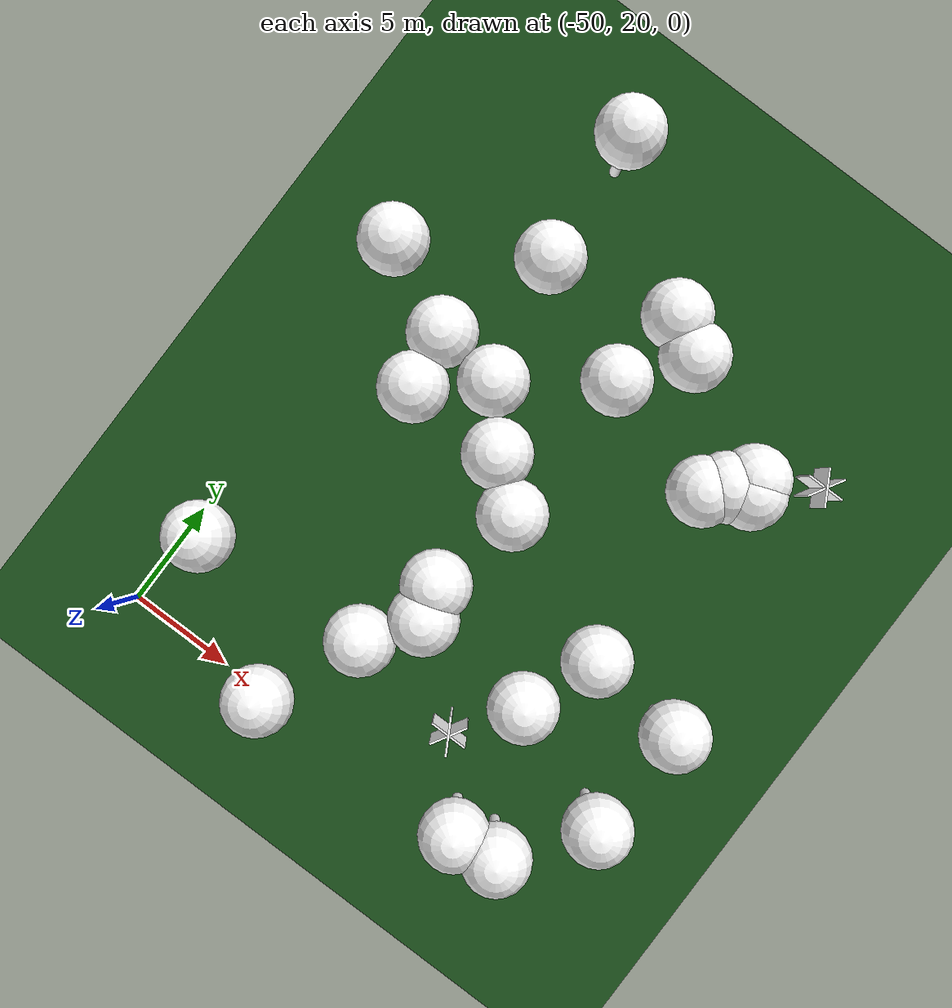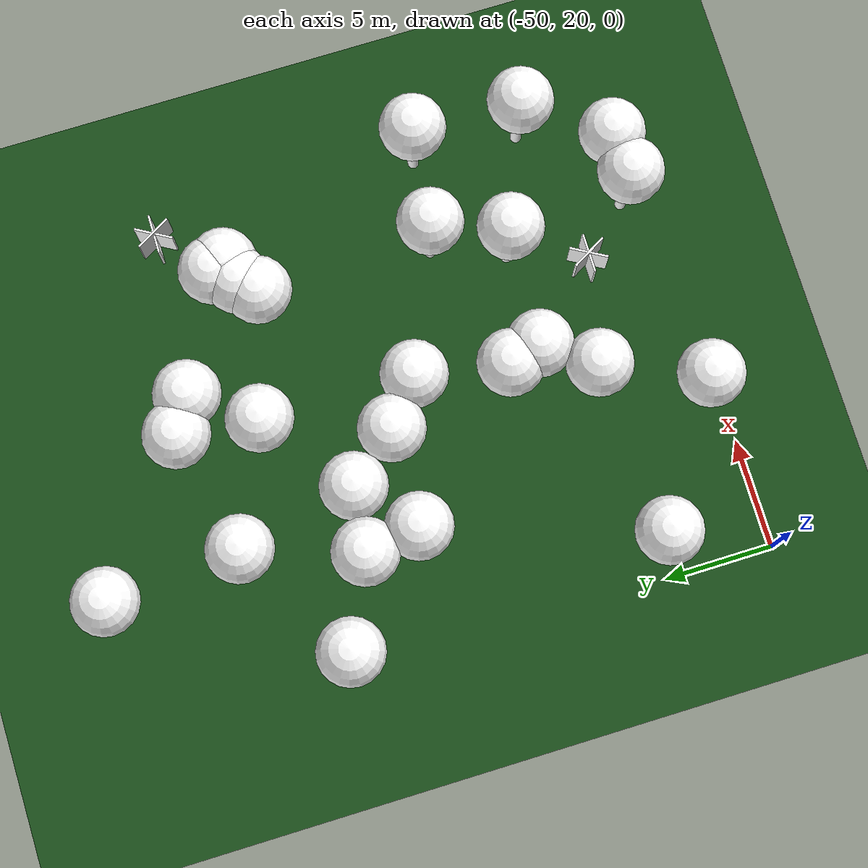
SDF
<sdf version="1.8">
 <world name="forest_world">
  <model name="fire_12">
   <pose>-35.18 23.91 1.00 0 0 0.00</pose>
   <static>true</static>
   <link name="fire_link">
    <visual name="fire_12_fire_main_0">
     <geometry><box><size>1.80 0.10 2.00</size></box></geometry>
     <material>
      <ambient>0.7 0.35 0.0 1</ambient>
      <diffuse>1 1 1 1</diffuse>
      <specular>0 0 0 1</specular>
      <emissive>0 0 0 1</emissive>
      <pbr>
       <metal><albedo_map>textures/fire.png</albedo_map><metalness>0.0</metalness><roughness>0.6</roughness></metal>
      </pbr>
     </material>
     <transparency>0.0</transparency>
     <cast_shadows>false</cast_shadows>
    </visual>
    <visual name="fire_12_fire_60_1">
     <pose>0.00 0.00 0.10 0 0 1.05</pose>
     <geometry><box><size>1.80 0.10 2.00</size></box></geometry>
     <material>
      <ambient>0.7 0.35 0.0 1</ambient>
      <diffuse>1 1 1 1</diffuse>
      <specular>0 0 0 1</specular>
      <emissive>0 0 0 1</emissive>
      <pbr>
       <metal><albedo_map>textures/fire.png</albedo_map><metalness>0.0</metalness><roughness>0.6</roughness></metal>
      </pbr>
     </material>
     <transparency>0.0</transparency>
     <cast_shadows>false</cast_shadows>
    </visual>
    <visual name="fire_12_fire_120_2">
     <pose>0.00 0.00 0.20 0 0 2.09</pose>
     <geometry><box><size>1.80 0.10 2.00</size></box></geometry>
     <material>
      <ambient>0.7 0.35 0.0 1</ambient>
      <diffuse>1 1 1 1</diffuse>
      <specular>0 0 0 1</specular>
      <emissive>0 0 0 1</emissive>
      <pbr>
       <metal><albedo_map>textures/fire.png</albedo_map><metalness>0.0</metalness><roughness>0.6</roughness></metal>
      </pbr>
     </material>
     <transparency>0.0</transparency>
     <cast_shadows>false</cast_shadows>
    </visual>
    <light type="point" name="fire_12_light_0">
     <pose>0.40 0.00 0.50 0 0 0</pose>
     <diffuse>1.0 0.7 0.3 1</diffuse>
     <specular>1.0 0.8 0.3 1</specular>
     <intensity>2</intensity>
     <attenuation>
      <range>2</range>
      <constant>0.1</constant>
      <linear>0.05</linear>
      <quadratic>0.02</quadratic>
     </attenuation>
     <cast_shadows>false</cast_shadows>
    </light>
    <light type="point" name="fire_12_light_1">
     <pose>-0.20 0.35 0.50 0 0 0</pose>
     <diffuse>1.0 0.7 0.3 1</diffuse>
     <specular>1.0 0.8 0.3 1</specular>
     <intensity>2</intensity>
     <attenuation>
      <range>2</range>
      <constant>0.1</constant>
      <linear>0.05</linear>
      <quadratic>0.02</quadratic>
     </attenuation>
     <cast_shadows>false</cast_shadows>
    </light>
    <light type="point" name="fire_12_light_2">
     <pose>-0.20 -0.35 0.50 0 0 0</pose>
     <diffuse>1.0 0.7 0.3 1</diffuse>
     <specular>1.0 0.8 0.3 1</specular>
     <intensity>2</intensity>
     <attenuation>
      <range>2</range>
      <constant>0.1</constant>
      <linear>0.05</linear>
      <quadratic>0.02</quadratic>
     </attenuation>
     <cast_shadows>false</cast_shadows>
    </light>
   </link>
   <plugin filename="libignition-gazebo-pose-publisher-system.so" name="ignition::gazebo::systems::PosePublisher">
    <frame_id>world</frame_id>
    <publish_link_pose>true</publish_link_pose>
    <use_pose_vector_msg>true</use_pose_vector_msg>
    <static_publisher>true</static_publisher>
    <static_update_frequency>1</static_update_frequency>
   </plugin>
  </model>
  <model name="fire_38">
   <pose>-28.61 42.40 1.00 0 0 0.00</pose>
   <static>true</static>
   <link name="fire_link">
    <visual name="fire_38_fire_main_0">
     <geometry><box><size>1.80 0.10 2.00</size></box></geometry>
     <material>
      <ambient>0.7 0.35 0.0 1</ambient>
      <diffuse>1 1 1 1</diffuse>
      <specular>0 0 0 1</specular>
      <emissive>0 0 0 1</emissive>
      <pbr>
       <metal><albedo_map>textures/fire.png</albedo_map><metalness>0.0</metalness><roughness>0.6</roughness></metal>
      </pbr>
     </material>
     <transparency>0.0</transparency>
     <cast_shadows>false</cast_shadows>
    </visual>
    <visual name="fire_38_fire_60_1">
     <pose>0.00 0.00 0.10 0 0 1.05</pose>
     <geometry><box><size>1.80 0.10 2.00</size></box></geometry>
     <material>
      <ambient>0.7 0.35 0.0 1</ambient>
      <diffuse>1 1 1 1</diffuse>
      <specular>0 0 0 1</specular>
      <emissive>0 0 0 1</emissive>
      <pbr>
       <metal><albedo_map>textures/fire.png</albedo_map><metalness>0.0</metalness><roughness>0.6</roughness></metal>
      </pbr>
     </material>
     <transparency>0.0</transparency>
     <cast_shadows>false</cast_shadows>
    </visual>
    <visual name="fire_38_fire_120_2">
     <pose>0.00 0.00 0.20 0 0 2.09</pose>
     <geometry><box><size>1.80 0.10 2.00</size></box></geometry>
     <material>
      <ambient>0.7 0.35 0.0 1</ambient>
      <diffuse>1 1 1 1</diffuse>
      <specular>0 0 0 1</specular>
      <emissive>0 0 0 1</emissive>
      <pbr>
       <metal><albedo_map>textures/fire.png</albedo_map><metalness>0.0</metalness><roughness>0.6</roughness></metal>
      </pbr>
     </material>
     <transparency>0.0</transparency>
     <cast_shadows>false</cast_shadows>
    </visual>
    <light type="point" name="fire_38_light_0">
     <pose>0.40 0.00 0.50 0 0 0</pose>
     <diffuse>1.0 0.7 0.3 1</diffuse>
     <specular>1.0 0.8 0.3 1</specular>
     <intensity>2</intensity>
     <attenuation>
      <range>2</range>
      <constant>0.1</constant>
      <linear>0.05</linear>
      <quadratic>0.02</quadratic>
     </attenuation>
     <cast_shadows>false</cast_shadows>
    </light>
    <light type="point" name="fire_38_light_1">
     <pose>-0.20 0.35 0.50 0 0 0</pose>
     <diffuse>1.0 0.7 0.3 1</diffuse>
     <specular>1.0 0.8 0.3 1</specular>
     <intensity>2</intensity>
     <attenuation>
      <range>2</range>
      <constant>0.1</constant>
      <linear>0.05</linear>
      <quadratic>0.02</quadratic>
     </attenuation>
     <cast_shadows>false</cast_shadows>
    </light>
    <light type="point" name="fire_38_light_2">
     <pose>-0.20 -0.35 0.50 0 0 0</pose>
     <diffuse>1.0 0.7 0.3 1</diffuse>
     <specular>1.0 0.8 0.3 1</specular>
     <intensity>2</intensity>
     <attenuation>
      <range>2</range>
      <constant>0.1</constant>
      <linear>0.05</linear>
      <quadratic>0.02</quadratic>
     </attenuation>
     <cast_shadows>false</cast_shadows>
    </light>
   </link>
   <plugin filename="libignition-gazebo-pose-publisher-system.so" name="ignition::gazebo::systems::PosePublisher">
    <frame_id>world</frame_id>
    <publish_link_pose>true</publish_link_pose>
    <use_pose_vector_msg>true</use_pose_vector_msg>
    <static_publisher>true</static_publisher>
    <static_update_frequency>1</static_update_frequency>
   </plugin>
  </model>
  <model name="fire_46">
   <pose>-45.00 35.23 1.00 0 0 0.00</pose>
   <static>true</static>
   <link name="fire_link">
    <visual name="fire_46_fire_main_0">
     <geometry><box><size>1.80 0.10 2.00</size></box></geometry>
     <material>
      <ambient>0.7 0.35 0.0 1</ambient>
      <diffuse>1 1 1 1</diffuse>
      <specular>0 0 0 1</specular>
      <emissive>0 0 0 1</emissive>
      <pbr>
       <metal><albedo_map>textures/fire.png</albedo_map><metalness>0.0</metalness><roughness>0.6</roughness></metal>
      </pbr>
     </material>
     <transparency>0.0</transparency>
     <cast_shadows>false</cast_shadows>
    </visual>
    <visual name="fire_46_fire_60_1">
     <pose>0.00 0.00 0.10 0 0 1.05</pose>
     <geometry><box><size>1.80 0.10 2.00</size></box></geometry>
     <material>
      <ambient>0.7 0.35 0.0 1</ambient>
      <diffuse>1 1 1 1</diffuse>
      <specular>0 0 0 1</specular>
      <emissive>0 0 0 1</emissive>
      <pbr>
       <metal><albedo_map>textures/fire.png</albedo_map><metalness>0.0</metalness><roughness>0.6</roughness></metal>
      </pbr>
     </material>
     <transparency>0.0</transparency>
     <cast_shadows>false</cast_shadows>
    </visual>
    <visual name="fire_46_fire_120_2">
     <pose>0.00 0.00 0.20 0 0 2.09</pose>
     <geometry><box><size>1.80 0.10 2.00</size></box></geometry>
     <material>
      <ambient>0.7 0.35 0.0 1</ambient>
      <diffuse>1 1 1 1</diffuse>
      <specular>0 0 0 1</specular>
      <emissive>0 0 0 1</emissive>
      <pbr>
       <metal><albedo_map>textures/fire.png</albedo_map><metalness>0.0</metalness><roughness>0.6</roughness></metal>
      </pbr>
     </material>
     <transparency>0.0</transparency>
     <cast_shadows>false</cast_shadows>
    </visual>
    <light type="point" name="fire_46_light_0">
     <pose>0.40 0.00 0.50 0 0 0</pose>
     <diffuse>1.0 0.7 0.3 1</diffuse>
     <specular>1.0 0.8 0.3 1</specular>
     <intensity>2</intensity>
     <attenuation>
      <range>2</range>
      <constant>0.1</constant>
      <linear>0.05</linear>
      <quadratic>0.02</quadratic>
     </attenuation>
     <cast_shadows>false</cast_shadows>
    </light>
    <light type="point" name="fire_46_light_1">
     <pose>-0.20 0.35 0.50 0 0 0</pose>
     <diffuse>1.0 0.7 0.3 1</diffuse>
     <specular>1.0 0.8 0.3 1</specular>
     <intensity>2</intensity>
     <attenuation>
      <range>2</range>
      <constant>0.1</constant>
      <linear>0.05</linear>
      <quadratic>0.02</quadratic>
     </attenuation>
     <cast_shadows>false</cast_shadows>
    </light>
    <light type="point" name="fire_46_light_2">
     <pose>-0.20 -0.35 0.50 0 0 0</pose>
     <diffuse>1.0 0.7 0.3 1</diffuse>
     <specular>1.0 0.8 0.3 1</specular>
     <intensity>2</intensity>
     <attenuation>
      <range>2</range>
      <constant>0.1</constant>
      <linear>0.05</linear>
      <quadratic>0.02</quadratic>
     </attenuation>
     <cast_shadows>false</cast_shadows>
    </light>
   </link>
   <plugin filename="libignition-gazebo-pose-publisher-system.so" name="ignition::gazebo::systems::PosePublisher">
    <frame_id>world</frame_id>
    <publish_link_pose>true</publish_link_pose>
    <use_pose_vector_msg>true</use_pose_vector_msg>
    <static_publisher>true</static_publisher>
    <static_update_frequency>1</static_update_frequency>
   </plugin>
  </model>
  <model name="tree_simple489">
   <static>1</static>
   <link name="link">
    <pose>0 0 0.1 0 -0 0</pose>
    <collision name="collision_trunk">
     <pose>0 0 2 0 -0 0</pose>
     <geometry><cylinder><radius>0.25</radius><length>4</length></cylinder></geometry>
    </collision>
    <collision name="collision_treetop">
     <pose>0 0 5.2 0 -0 0</pose>
     <geometry><sphere><radius>1.5</radius></sphere></geometry>
    </collision>
    <visual name="trunk">
     <pose>0 0 2 0 -0 0</pose>
     <geometry><cylinder><radius>0.25</radius><length>4</length></cylinder></geometry>
     <material>
      <ambient>0.5 0.5 0.5 1</ambient>
      <diffuse>1.0 1.0 1.0 1</diffuse>
      <specular>0.0 0.0 0.0 1</specular>
      <pbr>
       <metal>
        <albedo_map>../worlds/textures/tree_simple_trunk.jpg</albedo_map>
        <metalness>0.0</metalness>
        <roughness>0.8</roughness>
       </metal>
      </pbr>
     </material>
    </visual>
    <visual name="treetop">
     <pose>0 0 5.2 0 -0 0</pose>
     <geometry><sphere><radius>1.5</radius></sphere></geometry>
     <material>
      <ambient>0.5 0.5 0.5 1</ambient>
      <diffuse>1.0 1.0 1.0 1</diffuse>
      <specular>0.0 0.0 0.0 1</specular>
      <pbr>
       <metal>
        <albedo_map>../worlds/textures/tree_simple_treetop.jpg</albedo_map>
        <metalness>0.0</metalness>
        <roughness>0.9</roughness>
       </metal>
      </pbr>
     </material>
    </visual>
   </link>
   <pose>-32.6634579524 39.3278172931 0 0 -0 0</pose>
  </model>
  <model name="tree_simple482">
   <static>1</static>
   <link name="link">
    <pose>0 0 0.1 0 -0 0</pose>
    <collision name="collision_trunk">
     <pose>0 0 2 0 -0 0</pose>
     <geometry><cylinder><radius>0.25</radius><length>4</length></cylinder></geometry>
    </collision>
    <collision name="collision_treetop">
     <pose>0 0 5.2 0 -0 0</pose>
     <geometry><sphere><radius>1.5</radius></sphere></geometry>
    </collision>
    <visual name="trunk">
     <pose>0 0 2 0 -0 0</pose>
     <geometry><cylinder><radius>0.25</radius><length>4</length></cylinder></geometry>
     <material>
      <ambient>0.5 0.5 0.5 1</ambient>
      <diffuse>1.0 1.0 1.0 1</diffuse>
      <specular>0.0 0.0 0.0 1</specular>
      <pbr>
       <metal>
        <albedo_map>../worlds/textures/tree_simple_trunk.jpg</albedo_map>
        <metalness>0.0</metalness>
        <roughness>0.8</roughness>
       </metal>
      </pbr>
     </material>
    </visual>
    <visual name="treetop">
     <pose>0 0 5.2 0 -0 0</pose>
     <geometry><sphere><radius>1.5</radius></sphere></geometry>
     <material>
      <ambient>0.5 0.5 0.5 1</ambient>
      <diffuse>1.0 1.0 1.0 1</diffuse>
      <specular>0.0 0.0 0.0 1</specular>
      <pbr>
       <metal>
        <albedo_map>../worlds/textures/tree_simple_treetop.jpg</albedo_map>
        <metalness>0.0</metalness>
        <roughness>0.9</roughness>
       </metal>
      </pbr>
     </material>
    </visual>
   </link>
   <pose>-31.7137183406 39.6850484597 0 0 -0 0</pose>
  </model>
  <model name="tree_simple474">
   <static>1</static>
   <link name="link">
    <pose>0 0 0.1 0 -0 0</pose>
    <collision name="collision_trunk">
     <pose>0 0 2 0 -0 0</pose>
     <geometry><cylinder><radius>0.25</radius><length>4</length></cylinder></geometry>
    </collision>
    <collision name="collision_treetop">
     <pose>0 0 5.2 0 -0 0</pose>
     <geometry><sphere><radius>1.5</radius></sphere></geometry>
    </collision>
    <visual name="trunk">
     <pose>0 0 2 0 -0 0</pose>
     <geometry><cylinder><radius>0.25</radius><length>4</length></cylinder></geometry>
     <material>
      <ambient>0.5 0.5 0.5 1</ambient>
      <diffuse>1.0 1.0 1.0 1</diffuse>
      <specular>0.0 0.0 0.0 1</specular>
      <pbr>
       <metal>
        <albedo_map>../worlds/textures/tree_simple_trunk.jpg</albedo_map>
        <metalness>0.0</metalness>
        <roughness>0.8</roughness>
       </metal>
      </pbr>
     </material>
    </visual>
    <visual name="treetop">
     <pose>0 0 5.2 0 -0 0</pose>
     <geometry><sphere><radius>1.5</radius></sphere></geometry>
     <material>
      <ambient>0.5 0.5 0.5 1</ambient>
      <diffuse>1.0 1.0 1.0 1</diffuse>
      <specular>0.0 0.0 0.0 1</specular>
      <pbr>
       <metal>
        <albedo_map>../worlds/textures/tree_simple_treetop.jpg</albedo_map>
        <metalness>0.0</metalness>
        <roughness>0.9</roughness>
       </metal>
      </pbr>
     </material>
    </visual>
   </link>
   <pose>-45.5609359524 37.3889677829 0 0 -0 0</pose>
  </model>
  <model name="tree_simple470">
   <static>1</static>
   <link name="link">
    <pose>0 0 0.1 0 -0 0</pose>
    <collision name="collision_trunk">
     <pose>0 0 2 0 -0 0</pose>
     <geometry><cylinder><radius>0.25</radius><length>4</length></cylinder></geometry>
    </collision>
    <collision name="collision_treetop">
     <pose>0 0 5.2 0 -0 0</pose>
     <geometry><sphere><radius>1.5</radius></sphere></geometry>
    </collision>
    <visual name="trunk">
     <pose>0 0 2 0 -0 0</pose>
     <geometry><cylinder><radius>0.25</radius><length>4</length></cylinder></geometry>
     <material>
      <ambient>0.5 0.5 0.5 1</ambient>
      <diffuse>1.0 1.0 1.0 1</diffuse>
      <specular>0.0 0.0 0.0 1</specular>
      <pbr>
       <metal>
        <albedo_map>../worlds/textures/tree_simple_trunk.jpg</albedo_map>
        <metalness>0.0</metalness>
        <roughness>0.8</roughness>
       </metal>
      </pbr>
     </material>
    </visual>
    <visual name="treetop">
     <pose>0 0 5.2 0 -0 0</pose>
     <geometry><sphere><radius>1.5</radius></sphere></geometry>
     <material>
      <ambient>0.5 0.5 0.5 1</ambient>
      <diffuse>1.0 1.0 1.0 1</diffuse>
      <specular>0.0 0.0 0.0 1</specular>
      <pbr>
       <metal>
        <albedo_map>../worlds/textures/tree_simple_treetop.jpg</albedo_map>
        <metalness>0.0</metalness>
        <roughness>0.9</roughness>
       </metal>
      </pbr>
     </material>
    </visual>
   </link>
   <pose>-42.5418923399 21.0598314505 0 0 -0 0</pose>
  </model>
  <model name="tree_simple462">
   <static>1</static>
   <link name="link">
    <pose>0 0 0.1 0 -0 0</pose>
    <collision name="collision_trunk">
     <pose>0 0 2 0 -0 0</pose>
     <geometry><cylinder><radius>0.25</radius><length>4</length></cylinder></geometry>
    </collision>
    <collision name="collision_treetop">
     <pose>0 0 5.2 0 -0 0</pose>
     <geometry><sphere><radius>1.5</radius></sphere></geometry>
    </collision>
    <visual name="trunk">
     <pose>0 0 2 0 -0 0</pose>
     <geometry><cylinder><radius>0.25</radius><length>4</length></cylinder></geometry>
     <material>
      <ambient>0.5 0.5 0.5 1</ambient>
      <diffuse>1.0 1.0 1.0 1</diffuse>
      <specular>0.0 0.0 0.0 1</specular>
      <pbr>
       <metal>
        <albedo_map>../worlds/textures/tree_simple_trunk.jpg</albedo_map>
        <metalness>0.0</metalness>
        <roughness>0.8</roughness>
       </metal>
      </pbr>
     </material>
    </visual>
    <visual name="treetop">
     <pose>0 0 5.2 0 -0 0</pose>
     <geometry><sphere><radius>1.5</radius></sphere></geometry>
     <material>
      <ambient>0.5 0.5 0.5 1</ambient>
      <diffuse>1.0 1.0 1.0 1</diffuse>
      <specular>0.0 0.0 0.0 1</specular>
      <pbr>
       <metal>
        <albedo_map>../worlds/textures/tree_simple_treetop.jpg</albedo_map>
        <metalness>0.0</metalness>
        <roughness>0.9</roughness>
       </metal>
      </pbr>
     </material>
    </visual>
   </link>
   <pose>-33.3479265171 38.6010387018 0 0 -0 0</pose>
  </model>
  <model name="tree_simple440">
   <static>1</static>
   <link name="link">
    <pose>0 0 0.1 0 -0 0</pose>
    <collision name="collision_trunk">
     <pose>0 0 2 0 -0 0</pose>
     <geometry><cylinder><radius>0.25</radius><length>4</length></cylinder></geometry>
    </collision>
    <collision name="collision_treetop">
     <pose>0 0 5.2 0 -0 0</pose>
     <geometry><sphere><radius>1.5</radius></sphere></geometry>
    </collision>
    <visual name="trunk">
     <pose>0 0 2 0 -0 0</pose>
     <geometry><cylinder><radius>0.25</radius><length>4</length></cylinder></geometry>
     <material>
      <ambient>0.5 0.5 0.5 1</ambient>
      <diffuse>1.0 1.0 1.0 1</diffuse>
      <specular>0.0 0.0 0.0 1</specular>
      <pbr>
       <metal>
        <albedo_map>../worlds/textures/tree_simple_trunk.jpg</albedo_map>
        <metalness>0.0</metalness>
        <roughness>0.8</roughness>
       </metal>
      </pbr>
     </material>
    </visual>
    <visual name="treetop">
     <pose>0 0 5.2 0 -0 0</pose>
     <geometry><sphere><radius>1.5</radius></sphere></geometry>
     <material>
      <ambient>0.5 0.5 0.5 1</ambient>
      <diffuse>1.0 1.0 1.0 1</diffuse>
      <specular>0.0 0.0 0.0 1</specular>
      <pbr>
       <metal>
        <albedo_map>../worlds/textures/tree_simple_treetop.jpg</albedo_map>
        <metalness>0.0</metalness>
        <roughness>0.9</roughness>
       </metal>
      </pbr>
     </material>
    </visual>
   </link>
   <pose>-31.0139863597 21.7755311208 0 0 -0 0</pose>
  </model>
  <model name="tree_simple410">
   <static>1</static>
   <link name="link">
    <pose>0 0 0.1 0 -0 0</pose>
    <collision name="collision_trunk">
     <pose>0 0 2 0 -0 0</pose>
     <geometry><cylinder><radius>0.25</radius><length>4</length></cylinder></geometry>
    </collision>
    <collision name="collision_treetop">
     <pose>0 0 5.2 0 -0 0</pose>
     <geometry><sphere><radius>1.5</radius></sphere></geometry>
    </collision>
    <visual name="trunk">
     <pose>0 0 2 0 -0 0</pose>
     <geometry><cylinder><radius>0.25</radius><length>4</length></cylinder></geometry>
     <material>
      <ambient>0.5 0.5 0.5 1</ambient>
      <diffuse>1.0 1.0 1.0 1</diffuse>
      <specular>0.0 0.0 0.0 1</specular>
      <pbr>
       <metal>
        <albedo_map>../worlds/textures/tree_simple_trunk.jpg</albedo_map>
        <metalness>0.0</metalness>
        <roughness>0.8</roughness>
       </metal>
      </pbr>
     </material>
    </visual>
    <visual name="treetop">
     <pose>0 0 5.2 0 -0 0</pose>
     <geometry><sphere><radius>1.5</radius></sphere></geometry>
     <material>
      <ambient>0.5 0.5 0.5 1</ambient>
      <diffuse>1.0 1.0 1.0 1</diffuse>
      <specular>0.0 0.0 0.0 1</specular>
      <pbr>
       <metal>
        <albedo_map>../worlds/textures/tree_simple_treetop.jpg</albedo_map>
        <metalness>0.0</metalness>
        <roughness>0.9</roughness>
       </metal>
      </pbr>
     </material>
    </visual>
   </link>
   <pose>-31.9347087499 40.2537422087 0 0 -0 0</pose>
  </model>
  <model name="tree_simple351">
   <static>1</static>
   <link name="link">
    <pose>0 0 0.1 0 -0 0</pose>
    <collision name="collision_trunk">
     <pose>0 0 2 0 -0 0</pose>
     <geometry><cylinder><radius>0.25</radius><length>4</length></cylinder></geometry>
    </collision>
    <collision name="collision_treetop">
     <pose>0 0 5.2 0 -0 0</pose>
     <geometry><sphere><radius>1.5</radius></sphere></geometry>
    </collision>
    <visual name="trunk">
     <pose>0 0 2 0 -0 0</pose>
     <geometry><cylinder><radius>0.25</radius><length>4</length></cylinder></geometry>
     <material>
      <ambient>0.5 0.5 0.5 1</ambient>
      <diffuse>1.0 1.0 1.0 1</diffuse>
      <specular>0.0 0.0 0.0 1</specular>
      <pbr>
       <metal>
        <albedo_map>../worlds/textures/tree_simple_trunk.jpg</albedo_map>
        <metalness>0.0</metalness>
        <roughness>0.8</roughness>
       </metal>
      </pbr>
     </material>
    </visual>
    <visual name="treetop">
     <pose>0 0 5.2 0 -0 0</pose>
     <geometry><sphere><radius>1.5</radius></sphere></geometry>
     <material>
      <ambient>0.5 0.5 0.5 1</ambient>
      <diffuse>1.0 1.0 1.0 1</diffuse>
      <specular>0.0 0.0 0.0 1</specular>
      <pbr>
       <metal>
        <albedo_map>../worlds/textures/tree_simple_treetop.jpg</albedo_map>
        <metalness>0.0</metalness>
        <roughness>0.9</roughness>
       </metal>
      </pbr>
     </material>
    </visual>
   </link>
   <pose>-28.4628783032 25.1782097003 0 0 -0 0</pose>
  </model>
  <model name="tree_simple336">
   <static>1</static>
   <link name="link">
    <pose>0 0 0.1 0 -0 0</pose>
    <collision name="collision_trunk">
     <pose>0 0 2 0 -0 0</pose>
     <geometry><cylinder><radius>0.25</radius><length>4</length></cylinder></geometry>
    </collision>
    <collision name="collision_treetop">
     <pose>0 0 5.2 0 -0 0</pose>
     <geometry><sphere><radius>1.5</radius></sphere></geometry>
    </collision>
    <visual name="trunk">
     <pose>0 0 2 0 -0 0</pose>
     <geometry><cylinder><radius>0.25</radius><length>4</length></cylinder></geometry>
     <material>
      <ambient>0.5 0.5 0.5 1</ambient>
      <diffuse>1.0 1.0 1.0 1</diffuse>
      <specular>0.0 0.0 0.0 1</specular>
      <pbr>
       <metal>
        <albedo_map>../worlds/textures/tree_simple_trunk.jpg</albedo_map>
        <metalness>0.0</metalness>
        <roughness>0.8</roughness>
       </metal>
      </pbr>
     </material>
    </visual>
    <visual name="treetop">
     <pose>0 0 5.2 0 -0 0</pose>
     <geometry><sphere><radius>1.5</radius></sphere></geometry>
     <material>
      <ambient>0.5 0.5 0.5 1</ambient>
      <diffuse>1.0 1.0 1.0 1</diffuse>
      <specular>0.0 0.0 0.0 1</specular>
      <pbr>
       <metal>
        <albedo_map>../worlds/textures/tree_simple_treetop.jpg</albedo_map>
        <metalness>0.0</metalness>
        <roughness>0.9</roughness>
       </metal>
      </pbr>
     </material>
    </visual>
   </link>
   <pose>-43.9020074738 42.4187815875 0 0 -0 0</pose>
  </model>
  <model name="tree_simple331">
   <static>1</static>
   <link name="link">
    <pose>0 0 0.1 0 -0 0</pose>
    <collision name="collision_trunk">
     <pose>0 0 2 0 -0 0</pose>
     <geometry><cylinder><radius>0.25</radius><length>4</length></cylinder></geometry>
    </collision>
    <collision name="collision_treetop">
     <pose>0 0 5.2 0 -0 0</pose>
     <geometry><sphere><radius>1.5</radius></sphere></geometry>
    </collision>
    <visual name="trunk">
     <pose>0 0 2 0 -0 0</pose>
     <geometry><cylinder><radius>0.25</radius><length>4</length></cylinder></geometry>
     <material>
      <ambient>0.5 0.5 0.5 1</ambient>
      <diffuse>1.0 1.0 1.0 1</diffuse>
      <specular>0.0 0.0 0.0 1</specular>
      <pbr>
       <metal>
        <albedo_map>../worlds/textures/tree_simple_trunk.jpg</albedo_map>
        <metalness>0.0</metalness>
        <roughness>0.8</roughness>
       </metal>
      </pbr>
     </material>
    </visual>
    <visual name="treetop">
     <pose>0 0 5.2 0 -0 0</pose>
     <geometry><sphere><radius>1.5</radius></sphere></geometry>
     <material>
      <ambient>0.5 0.5 0.5 1</ambient>
      <diffuse>1.0 1.0 1.0 1</diffuse>
      <specular>0.0 0.0 0.0 1</specular>
      <pbr>
       <metal>
        <albedo_map>../worlds/textures/tree_simple_treetop.jpg</albedo_map>
        <metalness>0.0</metalness>
        <roughness>0.9</roughness>
       </metal>
      </pbr>
     </material>
    </visual>
   </link>
   <pose>-40.8341940448 34.8238319948 0 0 -0 0</pose>
  </model>
  <model name="tree_simple319">
   <static>1</static>
   <link name="link">
    <pose>0 0 0.1 0 -0 0</pose>
    <collision name="collision_trunk">
     <pose>0 0 2 0 -0 0</pose>
     <geometry><cylinder><radius>0.25</radius><length>4</length></cylinder></geometry>
    </collision>
    <collision name="collision_treetop">
     <pose>0 0 5.2 0 -0 0</pose>
     <geometry><sphere><radius>1.5</radius></sphere></geometry>
    </collision>
    <visual name="trunk">
     <pose>0 0 2 0 -0 0</pose>
     <geometry><cylinder><radius>0.25</radius><length>4</length></cylinder></geometry>
     <material>
      <ambient>0.5 0.5 0.5 1</ambient>
      <diffuse>1.0 1.0 1.0 1</diffuse>
      <specular>0.0 0.0 0.0 1</specular>
      <pbr>
       <metal>
        <albedo_map>../worlds/textures/tree_simple_trunk.jpg</albedo_map>
        <metalness>0.0</metalness>
        <roughness>0.8</roughness>
       </metal>
      </pbr>
     </material>
    </visual>
    <visual name="treetop">
     <pose>0 0 5.2 0 -0 0</pose>
     <geometry><sphere><radius>1.5</radius></sphere></geometry>
     <material>
      <ambient>0.5 0.5 0.5 1</ambient>
      <diffuse>1.0 1.0 1.0 1</diffuse>
      <specular>0.0 0.0 0.0 1</specular>
      <pbr>
       <metal>
        <albedo_map>../worlds/textures/tree_simple_treetop.jpg</albedo_map>
        <metalness>0.0</metalness>
        <roughness>0.9</roughness>
       </metal>
      </pbr>
     </material>
    </visual>
   </link>
   <pose>-33.8227496689 27.309967617 0 0 -0 0</pose>
  </model>
  <model name="tree_simple311">
   <static>1</static>
   <link name="link">
    <pose>0 0 0.1 0 -0 0</pose>
    <collision name="collision_trunk">
     <pose>0 0 2 0 -0 0</pose>
     <geometry><cylinder><radius>0.25</radius><length>4</length></cylinder></geometry>
    </collision>
    <collision name="collision_treetop">
     <pose>0 0 5.2 0 -0 0</pose>
     <geometry><sphere><radius>1.5</radius></sphere></geometry>
    </collision>
    <visual name="trunk">
     <pose>0 0 2 0 -0 0</pose>
     <geometry><cylinder><radius>0.25</radius><length>4</length></cylinder></geometry>
     <material>
      <ambient>0.5 0.5 0.5 1</ambient>
      <diffuse>1.0 1.0 1.0 1</diffuse>
      <specular>0.0 0.0 0.0 1</specular>
      <pbr>
       <metal>
        <albedo_map>../worlds/textures/tree_simple_trunk.jpg</albedo_map>
        <metalness>0.0</metalness>
        <roughness>0.8</roughness>
       </metal>
      </pbr>
     </material>
    </visual>
    <visual name="treetop">
     <pose>0 0 5.2 0 -0 0</pose>
     <geometry><sphere><radius>1.5</radius></sphere></geometry>
     <material>
      <ambient>0.5 0.5 0.5 1</ambient>
      <diffuse>1.0 1.0 1.0 1</diffuse>
      <specular>0.0 0.0 0.0 1</specular>
      <pbr>
       <metal>
        <albedo_map>../worlds/textures/tree_simple_treetop.jpg</albedo_map>
        <metalness>0.0</metalness>
        <roughness>0.9</roughness>
       </metal>
      </pbr>
     </material>
    </visual>
   </link>
   <pose>-49.3857645653 39.1709388153 0 0 -0 0</pose>
  </model>
  <model name="tree_simple291">
   <static>1</static>
   <link name="link">
    <pose>0 0 0.1 0 -0 0</pose>
    <collision name="collision_trunk">
     <pose>0 0 2 0 -0 0</pose>
     <geometry><cylinder><radius>0.25</radius><length>4</length></cylinder></geometry>
    </collision>
    <collision name="collision_treetop">
     <pose>0 0 5.2 0 -0 0</pose>
     <geometry><sphere><radius>1.5</radius></sphere></geometry>
    </collision>
    <visual name="trunk">
     <pose>0 0 2 0 -0 0</pose>
     <geometry><cylinder><radius>0.25</radius><length>4</length></cylinder></geometry>
     <material>
      <ambient>0.5 0.5 0.5 1</ambient>
      <diffuse>1.0 1.0 1.0 1</diffuse>
      <specular>0.0 0.0 0.0 1</specular>
      <pbr>
       <metal>
        <albedo_map>../worlds/textures/tree_simple_trunk.jpg</albedo_map>
        <metalness>0.0</metalness>
        <roughness>0.8</roughness>
       </metal>
      </pbr>
     </material>
    </visual>
    <visual name="treetop">
     <pose>0 0 5.2 0 -0 0</pose>
     <geometry><sphere><radius>1.5</radius></sphere></geometry>
     <material>
      <ambient>0.5 0.5 0.5 1</ambient>
      <diffuse>1.0 1.0 1.0 1</diffuse>
      <specular>0.0 0.0 0.0 1</specular>
      <pbr>
       <metal>
        <albedo_map>../worlds/textures/tree_simple_treetop.jpg</albedo_map>
        <metalness>0.0</metalness>
        <roughness>0.9</roughness>
       </metal>
      </pbr>
     </material>
    </visual>
   </link>
   <pose>-38.780558868 40.0860126223 0 0 -0 0</pose>
  </model>
  <model name="tree_simple286">
   <static>1</static>
   <link name="link">
    <pose>0 0 0.1 0 -0 0</pose>
    <collision name="collision_trunk">
     <pose>0 0 2 0 -0 0</pose>
     <geometry><cylinder><radius>0.25</radius><length>4</length></cylinder></geometry>
    </collision>
    <collision name="collision_treetop">
     <pose>0 0 5.2 0 -0 0</pose>
     <geometry><sphere><radius>1.5</radius></sphere></geometry>
    </collision>
    <visual name="trunk">
     <pose>0 0 2 0 -0 0</pose>
     <geometry><cylinder><radius>0.25</radius><length>4</length></cylinder></geometry>
     <material>
      <ambient>0.5 0.5 0.5 1</ambient>
      <diffuse>1.0 1.0 1.0 1</diffuse>
      <specular>0.0 0.0 0.0 1</specular>
      <pbr>
       <metal>
        <albedo_map>../worlds/textures/tree_simple_trunk.jpg</albedo_map>
        <metalness>0.0</metalness>
        <roughness>0.8</roughness>
       </metal>
      </pbr>
     </material>
    </visual>
    <visual name="treetop">
     <pose>0 0 5.2 0 -0 0</pose>
     <geometry><sphere><radius>1.5</radius></sphere></geometry>
     <material>
      <ambient>0.5 0.5 0.5 1</ambient>
      <diffuse>1.0 1.0 1.0 1</diffuse>
      <specular>0.0 0.0 0.0 1</specular>
      <pbr>
       <metal>
        <albedo_map>../worlds/textures/tree_simple_treetop.jpg</albedo_map>
        <metalness>0.0</metalness>
        <roughness>0.9</roughness>
       </metal>
      </pbr>
     </material>
    </visual>
   </link>
   <pose>-48.4343960976 24.9011596552 0 0 -0 0</pose>
  </model>
  <model name="tree_simple256">
   <static>1</static>
   <link name="link">
    <pose>0 0 0.1 0 -0 0</pose>
    <collision name="collision_trunk">
     <pose>0 0 2 0 -0 0</pose>
     <geometry><cylinder><radius>0.25</radius><length>4</length></cylinder></geometry>
    </collision>
    <collision name="collision_treetop">
     <pose>0 0 5.2 0 -0 0</pose>
     <geometry><sphere><radius>1.5</radius></sphere></geometry>
    </collision>
    <visual name="trunk">
     <pose>0 0 2 0 -0 0</pose>
     <geometry><cylinder><radius>0.25</radius><length>4</length></cylinder></geometry>
     <material>
      <ambient>0.5 0.5 0.5 1</ambient>
      <diffuse>1.0 1.0 1.0 1</diffuse>
      <specular>0.0 0.0 0.0 1</specular>
      <pbr>
       <metal>
        <albedo_map>../worlds/textures/tree_simple_trunk.jpg</albedo_map>
        <metalness>0.0</metalness>
        <roughness>0.8</roughness>
       </metal>
      </pbr>
     </material>
    </visual>
    <visual name="treetop">
     <pose>0 0 5.2 0 -0 0</pose>
     <geometry><sphere><radius>1.5</radius></sphere></geometry>
     <material>
      <ambient>0.5 0.5 0.5 1</ambient>
      <diffuse>1.0 1.0 1.0 1</diffuse>
      <specular>0.0 0.0 0.0 1</specular>
      <pbr>
       <metal>
        <albedo_map>../worlds/textures/tree_simple_treetop.jpg</albedo_map>
        <metalness>0.0</metalness>
        <roughness>0.9</roughness>
       </metal>
      </pbr>
     </material>
    </visual>
   </link>
   <pose>-38.4325558623 43.6568851864 0 0 -0 0</pose>
  </model>
  <model name="tree_simple247">
   <static>1</static>
   <link name="link">
    <pose>0 0 0.1 0 -0 0</pose>
    <collision name="collision_trunk">
     <pose>0 0 2 0 -0 0</pose>
     <geometry><cylinder><radius>0.25</radius><length>4</length></cylinder></geometry>
    </collision>
    <collision name="collision_treetop">
     <pose>0 0 5.2 0 -0 0</pose>
     <geometry><sphere><radius>1.5</radius></sphere></geometry>
    </collision>
    <visual name="trunk">
     <pose>0 0 2 0 -0 0</pose>
     <geometry><cylinder><radius>0.25</radius><length>4</length></cylinder></geometry>
     <material>
      <ambient>0.5 0.5 0.5 1</ambient>
      <diffuse>1.0 1.0 1.0 1</diffuse>
      <specular>0.0 0.0 0.0 1</specular>
      <pbr>
       <metal>
        <albedo_map>../worlds/textures/tree_simple_trunk.jpg</albedo_map>
        <metalness>0.0</metalness>
        <roughness>0.8</roughness>
       </metal>
      </pbr>
     </material>
    </visual>
    <visual name="treetop">
     <pose>0 0 5.2 0 -0 0</pose>
     <geometry><sphere><radius>1.5</radius></sphere></geometry>
     <material>
      <ambient>0.5 0.5 0.5 1</ambient>
      <diffuse>1.0 1.0 1.0 1</diffuse>
      <specular>0.0 0.0 0.0 1</specular>
      <pbr>
       <metal>
        <albedo_map>../worlds/textures/tree_simple_treetop.jpg</albedo_map>
        <metalness>0.0</metalness>
        <roughness>0.9</roughness>
       </metal>
      </pbr>
     </material>
    </visual>
   </link>
   <pose>-44.3832388131 48.3955182604 0 0 -0 0</pose>
  </model>
  <model name="tree_simple208">
   <static>1</static>
   <link name="link">
    <pose>0 0 0.1 0 -0 0</pose>
    <collision name="collision_trunk">
     <pose>0 0 2 0 -0 0</pose>
     <geometry><cylinder><radius>0.25</radius><length>4</length></cylinder></geometry>
    </collision>
    <collision name="collision_treetop">
     <pose>0 0 5.2 0 -0 0</pose>
     <geometry><sphere><radius>1.5</radius></sphere></geometry>
    </collision>
    <visual name="trunk">
     <pose>0 0 2 0 -0 0</pose>
     <geometry><cylinder><radius>0.25</radius><length>4</length></cylinder></geometry>
     <material>
      <ambient>0.5 0.5 0.5 1</ambient>
      <diffuse>1.0 1.0 1.0 1</diffuse>
      <specular>0.0 0.0 0.0 1</specular>
      <pbr>
       <metal>
        <albedo_map>../worlds/textures/tree_simple_trunk.jpg</albedo_map>
        <metalness>0.0</metalness>
        <roughness>0.8</roughness>
       </metal>
      </pbr>
     </material>
    </visual>
    <visual name="treetop">
     <pose>0 0 5.2 0 -0 0</pose>
     <geometry><sphere><radius>1.5</radius></sphere></geometry>
     <material>
      <ambient>0.5 0.5 0.5 1</ambient>
      <diffuse>1.0 1.0 1.0 1</diffuse>
      <specular>0.0 0.0 0.0 1</specular>
      <pbr>
       <metal>
        <albedo_map>../worlds/textures/tree_simple_treetop.jpg</albedo_map>
        <metalness>0.0</metalness>
        <roughness>0.9</roughness>
       </metal>
      </pbr>
     </material>
    </visual>
   </link>
   <pose>-39.1560557195 27.6775865092 0 0 -0 0</pose>
  </model>
  <model name="tree_simple205">
   <static>1</static>
   <link name="link">
    <pose>0 0 0.1 0 -0 0</pose>
    <collision name="collision_trunk">
     <pose>0 0 2 0 -0 0</pose>
     <geometry><cylinder><radius>0.25</radius><length>4</length></cylinder></geometry>
    </collision>
    <collision name="collision_treetop">
     <pose>0 0 5.2 0 -0 0</pose>
     <geometry><sphere><radius>1.5</radius></sphere></geometry>
    </collision>
    <visual name="trunk">
     <pose>0 0 2 0 -0 0</pose>
     <geometry><cylinder><radius>0.25</radius><length>4</length></cylinder></geometry>
     <material>
      <ambient>0.5 0.5 0.5 1</ambient>
      <diffuse>1.0 1.0 1.0 1</diffuse>
      <specular>0.0 0.0 0.0 1</specular>
      <pbr>
       <metal>
        <albedo_map>../worlds/textures/tree_simple_trunk.jpg</albedo_map>
        <metalness>0.0</metalness>
        <roughness>0.8</roughness>
       </metal>
      </pbr>
     </material>
    </visual>
    <visual name="treetop">
     <pose>0 0 5.2 0 -0 0</pose>
     <geometry><sphere><radius>1.5</radius></sphere></geometry>
     <material>
      <ambient>0.5 0.5 0.5 1</ambient>
      <diffuse>1.0 1.0 1.0 1</diffuse>
      <specular>0.0 0.0 0.0 1</specular>
      <pbr>
       <metal>
        <albedo_map>../worlds/textures/tree_simple_treetop.jpg</albedo_map>
        <metalness>0.0</metalness>
        <roughness>0.9</roughness>
       </metal>
      </pbr>
     </material>
    </visual>
   </link>
   <pose>-28.261168219 30.0880019851 0 0 -0 0</pose>
  </model>
  <model name="tree_simple112">
   <static>1</static>
   <link name="link">
    <pose>0 0 0.1 0 -0 0</pose>
    <collision name="collision_trunk">
     <pose>0 0 2 0 -0 0</pose>
     <geometry><cylinder><radius>0.25</radius><length>4</length></cylinder></geometry>
    </collision>
    <collision name="collision_treetop">
     <pose>0 0 5.2 0 -0 0</pose>
     <geometry><sphere><radius>1.5</radius></sphere></geometry>
    </collision>
    <visual name="trunk">
     <pose>0 0 2 0 -0 0</pose>
     <geometry><cylinder><radius>0.25</radius><length>4</length></cylinder></geometry>
     <material>
      <ambient>0.5 0.5 0.5 1</ambient>
      <diffuse>1.0 1.0 1.0 1</diffuse>
      <specular>0.0 0.0 0.0 1</specular>
      <pbr>
       <metal>
        <albedo_map>../worlds/textures/tree_simple_trunk.jpg</albedo_map>
        <metalness>0.0</metalness>
        <roughness>0.8</roughness>
       </metal>
      </pbr>
     </material>
    </visual>
    <visual name="treetop">
     <pose>0 0 5.2 0 -0 0</pose>
     <geometry><sphere><radius>1.5</radius></sphere></geometry>
     <material>
      <ambient>0.5 0.5 0.5 1</ambient>
      <diffuse>1.0 1.0 1.0 1</diffuse>
      <specular>0.0 0.0 0.0 1</specular>
      <pbr>
       <metal>
        <albedo_map>../worlds/textures/tree_simple_treetop.jpg</albedo_map>
        <metalness>0.0</metalness>
        <roughness>0.9</roughness>
       </metal>
      </pbr>
     </material>
    </visual>
   </link>
   <pose>-36.862810057 42.7576459823 0 0 -0 0</pose>
  </model>
  <model name="tree_simple109">
   <static>1</static>
   <link name="link">
    <pose>0 0 0.1 0 -0 0</pose>
    <collision name="collision_trunk">
     <pose>0 0 2 0 -0 0</pose>
     <geometry><cylinder><radius>0.25</radius><length>4</length></cylinder></geometry>
    </collision>
    <collision name="collision_treetop">
     <pose>0 0 5.2 0 -0 0</pose>
     <geometry><sphere><radius>1.5</radius></sphere></geometry>
    </collision>
    <visual name="trunk">
     <pose>0 0 2 0 -0 0</pose>
     <geometry><cylinder><radius>0.25</radius><length>4</length></cylinder></geometry>
     <material>
      <ambient>0.5 0.5 0.5 1</ambient>
      <diffuse>1.0 1.0 1.0 1</diffuse>
      <specular>0.0 0.0 0.0 1</specular>
      <pbr>
       <metal>
        <albedo_map>../worlds/textures/tree_simple_trunk.jpg</albedo_map>
        <metalness>0.0</metalness>
        <roughness>0.8</roughness>
       </metal>
      </pbr>
     </material>
    </visual>
    <visual name="treetop">
     <pose>0 0 5.2 0 -0 0</pose>
     <geometry><sphere><radius>1.5</radius></sphere></geometry>
     <material>
      <ambient>0.5 0.5 0.5 1</ambient>
      <diffuse>1.0 1.0 1.0 1</diffuse>
      <specular>0.0 0.0 0.0 1</specular>
      <pbr>
       <metal>
        <albedo_map>../worlds/textures/tree_simple_treetop.jpg</albedo_map>
        <metalness>0.0</metalness>
        <roughness>0.9</roughness>
       </metal>
      </pbr>
     </material>
    </visual>
   </link>
   <pose>-42.7379400786 37.0728302321 0 0 -0 0</pose>
  </model>
  <model name="tree_simple53">
   <static>1</static>
   <link name="link">
    <pose>0 0 0.1 0 -0 0</pose>
    <collision name="collision_trunk">
     <pose>0 0 2 0 -0 0</pose>
     <geometry><cylinder><radius>0.25</radius><length>4</length></cylinder></geometry>
    </collision>
    <collision name="collision_treetop">
     <pose>0 0 5.2 0 -0 0</pose>
     <geometry><sphere><radius>1.5</radius></sphere></geometry>
    </collision>
    <visual name="trunk">
     <pose>0 0 2 0 -0 0</pose>
     <geometry><cylinder><radius>0.25</radius><length>4</length></cylinder></geometry>
     <material>
      <ambient>0.5 0.5 0.5 1</ambient>
      <diffuse>1.0 1.0 1.0 1</diffuse>
      <specular>0.0 0.0 0.0 1</specular>
      <pbr>
       <metal>
        <albedo_map>../worlds/textures/tree_simple_trunk.jpg</albedo_map>
        <metalness>0.0</metalness>
        <roughness>0.8</roughness>
       </metal>
      </pbr>
     </material>
    </visual>
    <visual name="treetop">
     <pose>0 0 5.2 0 -0 0</pose>
     <geometry><sphere><radius>1.5</radius></sphere></geometry>
     <material>
      <ambient>0.5 0.5 0.5 1</ambient>
      <diffuse>1.0 1.0 1.0 1</diffuse>
      <specular>0.0 0.0 0.0 1</specular>
      <pbr>
       <metal>
        <albedo_map>../worlds/textures/tree_simple_treetop.jpg</albedo_map>
        <metalness>0.0</metalness>
        <roughness>0.9</roughness>
       </metal>
      </pbr>
     </material>
    </visual>
   </link>
   <pose>-38.8612108818 33.2267374622 0 0 -0 0</pose>
  </model>
  <model name="tree_simple43">
   <static>1</static>
   <link name="link">
    <pose>0 0 0.1 0 -0 0</pose>
    <collision name="collision_trunk">
     <pose>0 0 2 0 -0 0</pose>
     <geometry><cylinder><radius>0.25</radius><length>4</length></cylinder></geometry>
    </collision>
    <collision name="collision_treetop">
     <pose>0 0 5.2 0 -0 0</pose>
     <geometry><sphere><radius>1.5</radius></sphere></geometry>
    </collision>
    <visual name="trunk">
     <pose>0 0 2 0 -0 0</pose>
     <geometry><cylinder><radius>0.25</radius><length>4</length></cylinder></geometry>
     <material>
      <ambient>0.5 0.5 0.5 1</ambient>
      <diffuse>1.0 1.0 1.0 1</diffuse>
      <specular>0.0 0.0 0.0 1</specular>
      <pbr>
       <metal>
        <albedo_map>../worlds/textures/tree_simple_trunk.jpg</albedo_map>
        <metalness>0.0</metalness>
        <roughness>0.8</roughness>
       </metal>
      </pbr>
     </material>
    </visual>
    <visual name="treetop">
     <pose>0 0 5.2 0 -0 0</pose>
     <geometry><sphere><radius>1.5</radius></sphere></geometry>
     <material>
      <ambient>0.5 0.5 0.5 1</ambient>
      <diffuse>1.0 1.0 1.0 1</diffuse>
      <specular>0.0 0.0 0.0 1</specular>
      <pbr>
       <metal>
        <albedo_map>../worlds/textures/tree_simple_treetop.jpg</albedo_map>
        <metalness>0.0</metalness>
        <roughness>0.9</roughness>
       </metal>
      </pbr>
     </material>
    </visual>
   </link>
   <pose>-32.9489924766 21.5371657104 0 0 -0 0</pose>
  </model>
  <model name="tree_simple36">
   <static>1</static>
   <link name="link">
    <pose>0 0 0.1 0 -0 0</pose>
    <collision name="collision_trunk">
     <pose>0 0 2 0 -0 0</pose>
     <geometry><cylinder><radius>0.25</radius><length>4</length></cylinder></geometry>
    </collision>
    <collision name="collision_treetop">
     <pose>0 0 5.2 0 -0 0</pose>
     <geometry><sphere><radius>1.5</radius></sphere></geometry>
    </collision>
    <visual name="trunk">
     <pose>0 0 2 0 -0 0</pose>
     <geometry><cylinder><radius>0.25</radius><length>4</length></cylinder></geometry>
     <material>
      <ambient>0.5 0.5 0.5 1</ambient>
      <diffuse>1.0 1.0 1.0 1</diffuse>
      <specular>0.0 0.0 0.0 1</specular>
      <pbr>
       <metal>
        <albedo_map>../worlds/textures/tree_simple_trunk.jpg</albedo_map>
        <metalness>0.0</metalness>
        <roughness>0.8</roughness>
       </metal>
      </pbr>
     </material>
    </visual>
    <visual name="treetop">
     <pose>0 0 5.2 0 -0 0</pose>
     <geometry><sphere><radius>1.5</radius></sphere></geometry>
     <material>
      <ambient>0.5 0.5 0.5 1</ambient>
      <diffuse>1.0 1.0 1.0 1</diffuse>
      <specular>0.0 0.0 0.0 1</specular>
      <pbr>
       <metal>
        <albedo_map>../worlds/textures/tree_simple_treetop.jpg</albedo_map>
        <metalness>0.0</metalness>
        <roughness>0.9</roughness>
       </metal>
      </pbr>
     </material>
    </visual>
   </link>
   <pose>-40.7093037753 25.4885926906 0 0 -0 0</pose>
  </model>
  <model name="tree_simple34">
   <static>1</static>
   <link name="link">
    <pose>0 0 0.1 0 -0 0</pose>
    <collision name="collision_trunk">
     <pose>0 0 2 0 -0 0</pose>
     <geometry><cylinder><radius>0.25</radius><length>4</length></cylinder></geometry>
    </collision>
    <collision name="collision_treetop">
     <pose>0 0 5.2 0 -0 0</pose>
     <geometry><sphere><radius>1.5</radius></sphere></geometry>
    </collision>
    <visual name="trunk">
     <pose>0 0 2 0 -0 0</pose>
     <geometry><cylinder><radius>0.25</radius><length>4</length></cylinder></geometry>
     <material>
      <ambient>0.5 0.5 0.5 1</ambient>
      <diffuse>1.0 1.0 1.0 1</diffuse>
      <specular>0.0 0.0 0.0 1</specular>
      <pbr>
       <metal>
        <albedo_map>../worlds/textures/tree_simple_trunk.jpg</albedo_map>
        <metalness>0.0</metalness>
        <roughness>0.8</roughness>
       </metal>
      </pbr>
     </material>
    </visual>
    <visual name="treetop">
     <pose>0 0 5.2 0 -0 0</pose>
     <geometry><sphere><radius>1.5</radius></sphere></geometry>
     <material>
      <ambient>0.5 0.5 0.5 1</ambient>
      <diffuse>1.0 1.0 1.0 1</diffuse>
      <specular>0.0 0.0 0.0 1</specular>
      <pbr>
       <metal>
        <albedo_map>../worlds/textures/tree_simple_treetop.jpg</albedo_map>
        <metalness>0.0</metalness>
        <roughness>0.9</roughness>
       </metal>
      </pbr>
     </material>
    </visual>
   </link>
   <pose>-32.5861870304 30.5926655905 0 0 -0 0</pose>
  </model>
  <model name="tree_simple25">
   <static>1</static>
   <link name="link">
    <pose>0 0 0.1 0 -0 0</pose>
    <collision name="collision_trunk">
     <pose>0 0 2 0 -0 0</pose>
     <geometry><cylinder><radius>0.25</radius><length>4</length></cylinder></geometry>
    </collision>
    <collision name="collision_treetop">
     <pose>0 0 5.2 0 -0 0</pose>
     <geometry><sphere><radius>1.5</radius></sphere></geometry>
    </collision>
    <visual name="trunk">
     <pose>0 0 2 0 -0 0</pose>
     <geometry><cylinder><radius>0.25</radius><length>4</length></cylinder></geometry>
     <material>
      <ambient>0.5 0.5 0.5 1</ambient>
      <diffuse>1.0 1.0 1.0 1</diffuse>
      <specular>0.0 0.0 0.0 1</specular>
      <pbr>
       <metal>
        <albedo_map>../worlds/textures/tree_simple_trunk.jpg</albedo_map>
        <metalness>0.0</metalness>
        <roughness>0.8</roughness>
       </metal>
      </pbr>
     </material>
    </visual>
    <visual name="treetop">
     <pose>0 0 5.2 0 -0 0</pose>
     <geometry><sphere><radius>1.5</radius></sphere></geometry>
     <material>
      <ambient>0.5 0.5 0.5 1</ambient>
      <diffuse>1.0 1.0 1.0 1</diffuse>
      <specular>0.0 0.0 0.0 1</specular>
      <pbr>
       <metal>
        <albedo_map>../worlds/textures/tree_simple_treetop.jpg</albedo_map>
        <metalness>0.0</metalness>
        <roughness>0.9</roughness>
       </metal>
      </pbr>
     </material>
    </visual>
   </link>
   <pose>-39.5999688194 29.1164638866 0 0 -0 0</pose>
  </model>
  <model name="tree_simple7">
   <static>1</static>
   <link name="link">
    <pose>0 0 0.1 0 -0 0</pose>
    <collision name="collision_trunk">
     <pose>0 0 2 0 -0 0</pose>
     <geometry><cylinder><radius>0.25</radius><length>4</length></cylinder></geometry>
    </collision>
    <collision name="collision_treetop">
     <pose>0 0 5.2 0 -0 0</pose>
     <geometry><sphere><radius>1.5</radius></sphere></geometry>
    </collision>
    <visual name="trunk">
     <pose>0 0 2 0 -0 0</pose>
     <geometry><cylinder><radius>0.25</radius><length>4</length></cylinder></geometry>
     <material>
      <ambient>0.5 0.5 0.5 1</ambient>
      <diffuse>1.0 1.0 1.0 1</diffuse>
      <specular>0.0 0.0 0.0 1</specular>
      <pbr>
       <metal>
        <albedo_map>../worlds/textures/tree_simple_trunk.jpg</albedo_map>
        <metalness>0.0</metalness>
        <roughness>0.8</roughness>
       </metal>
      </pbr>
     </material>
    </visual>
    <visual name="treetop">
     <pose>0 0 5.2 0 -0 0</pose>
     <geometry><sphere><radius>1.5</radius></sphere></geometry>
     <material>
      <ambient>0.5 0.5 0.5 1</ambient>
      <diffuse>1.0 1.0 1.0 1</diffuse>
      <specular>0.0 0.0 0.0 1</specular>
      <pbr>
       <metal>
        <albedo_map>../worlds/textures/tree_simple_treetop.jpg</albedo_map>
        <metalness>0.0</metalness>
        <roughness>0.9</roughness>
       </metal>
      </pbr>
     </material>
    </visual>
   </link>
   <pose>-45.1752630278 34.9225483382 0 0 -0 0</pose>
  </model>
  <model name="ground_plane">
   <static>true</static>
   <link name="link">
    <collision name="collision">
     <geometry><mesh><uri>../worlds/textures/grass_plane.dae</uri><scale>1 1 1</scale></mesh></geometry>
     <surface><friction><ode><mu>1</mu><mu2>1</mu2></ode></friction></surface>
    </collision>
    <visual name="snow">
     <cast_shadows>false</cast_shadows>
     <geometry><mesh><uri>../worlds/textures/grass_plane.dae</uri><scale>1 1 1</scale></mesh></geometry>
     <material>
      <ambient>0.05 0.2 0.05 1</ambient>
      <diffuse>0.1 0.3 0.1 1</diffuse>
      <specular>0.05 0.05 0.05 1</specular>
     </material>
    </visual>
   </link>
  </model>
 </world>
</sdf>
